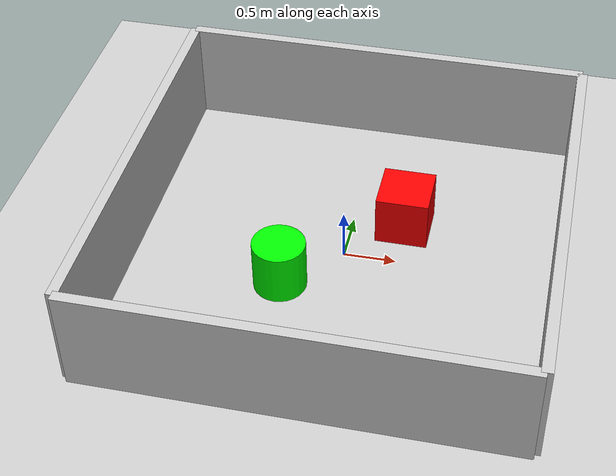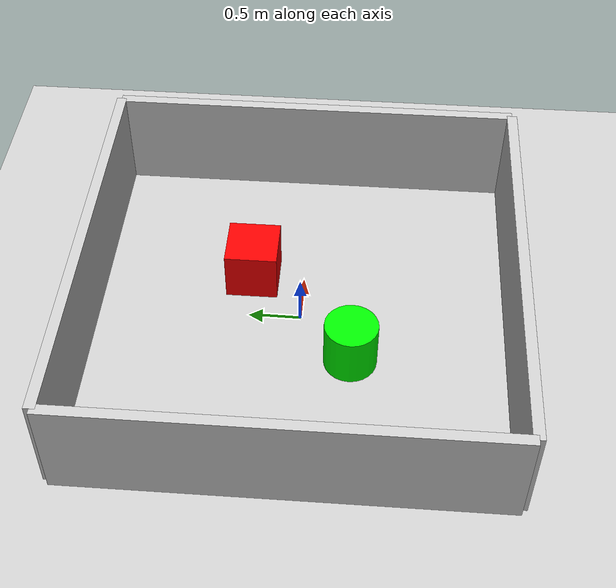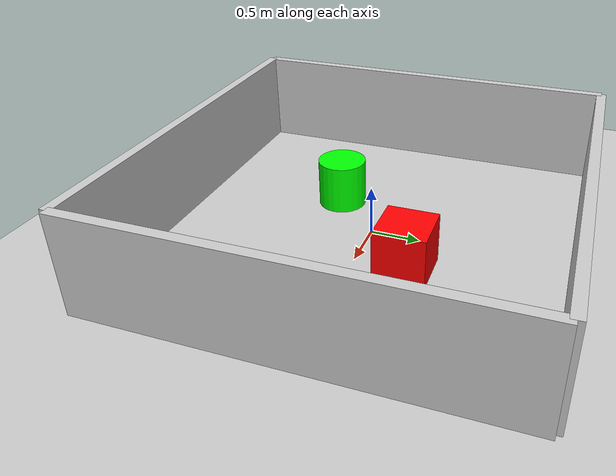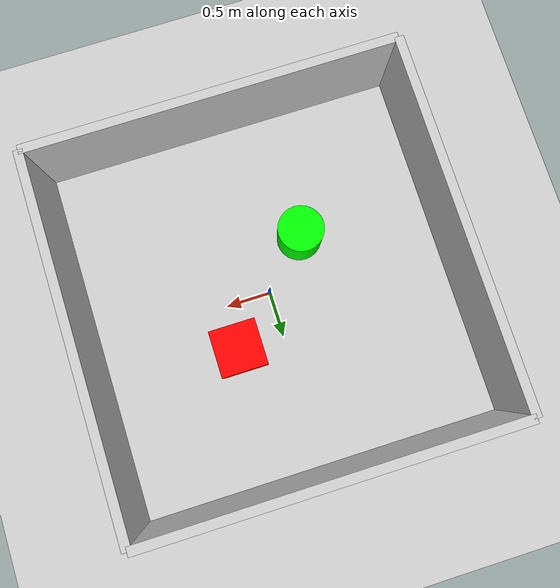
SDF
<?xml version="1.0" ?>
<sdf version="1.6">
  <world name="simple_world">

    <!-- A global light source -->
    <include>
      <uri>model://sun</uri>
    </include>

    <!-- A ground plane -->
    <include>
      <uri>model://ground_plane</uri>
    </include>

    <!-- Simple walls to create a room -->
    <model name="wall_1">
      <static>true</static>
      <link name="link">
        <collision name="collision">
          <geometry>
            <box>
              <size>4 0.1 1</size>
            </box>
          </geometry>
        </collision>
        <visual name="visual">
          <geometry>
            <box>
              <size>4 0.1 1</size>
            </box>
          </geometry>
          <material>
            <ambient>0.8 0.8 0.8 1</ambient>
            <diffuse>0.8 0.8 0.8 1</diffuse>
          </material>
        </visual>
      </link>
      <pose>0 2 0.5 0 0 0</pose>
    </model>

    <model name="wall_2">
      <static>true</static>
      <link name="link">
        <collision name="collision">
          <geometry>
            <box>
              <size>4 0.1 1</size>
            </box>
          </geometry>
        </collision>
        <visual name="visual">
          <geometry>
            <box>
              <size>4 0.1 1</size>
            </box>
          </geometry>
          <material>
            <ambient>0.8 0.8 0.8 1</ambient>
            <diffuse>0.8 0.8 0.8 1</diffuse>
          </material>
        </visual>
      </link>
      <pose>0 -2 0.5 0 0 0</pose>
    </model>

    <model name="wall_3">
      <static>true</static>
      <link name="link">
        <collision name="collision">
          <geometry>
            <box>
              <size>0.1 4 1</size>
            </box>
          </geometry>
        </collision>
        <visual name="visual">
          <geometry>
            <box>
              <size>0.1 4 1</size>
            </box>
          </geometry>
          <material>
            <ambient>0.8 0.8 0.8 1</ambient>
            <diffuse>0.8 0.8 0.8 1</diffuse>
          </material>
        </visual>
      </link>
      <pose>2 0 0.5 0 0 0</pose>
    </model>

    <model name="wall_4">
      <static>true</static>
      <link name="link">
        <collision name="collision">
          <geometry>
            <box>
              <size>0.1 4 1</size>
            </box>
          </geometry>
        </collision>
        <visual name="visual">
          <geometry>
            <box>
              <size>0.1 4 1</size>
            </box>
          </geometry>
          <material>
            <ambient>0.8 0.8 0.8 1</ambient>
            <diffuse>0.8 0.8 0.8 1</diffuse>
          </material>
        </visual>
      </link>
      <pose>-2 0 0.5 0 0 0</pose>
    </model>

    <!-- Some simple obstacles inside -->
    <model name="obstacle_1">
      <static>true</static>
      <link name="link">
        <collision name="collision">
          <geometry>
            <box>
              <size>0.5 0.5 0.5</size>
            </box>
          </geometry>
        </collision>
        <visual name="visual">
          <geometry>
            <box>
              <size>0.5 0.5 0.5</size>
            </box>
          </geometry>
          <material>
            <ambient>1 0 0 1</ambient>
            <diffuse>1 0 0 1</diffuse>
          </material>
        </visual>
      </link>
      <pose>0.5 0.5 0.25 0 0 0</pose>
    </model>

    <model name="obstacle_2">
      <static>true</static>
      <link name="link">
        <collision name="collision">
          <geometry>
            <cylinder>
              <radius>0.25</radius>
              <length>0.5</length>
            </cylinder>
          </geometry>
        </collision>
        <visual name="visual">
          <geometry>
            <cylinder>
              <radius>0.25</radius>
              <length>0.5</length>
            </cylinder>
          </geometry>
          <material>
            <ambient>0 1 0 1</ambient>
            <diffuse>0 1 0 1</diffuse>
          </material>
        </visual>
      </link>
      <pose>-0.5 -0.5 0.25 0 0 0</pose>
    </model>

    <physics name="default_physics" default="0" type="ode">
      <gravity>0 0 -9.8066</gravity>
      <ode>
        <solver>
          <type>quick</type>
          <iters>10</iters>
          <sor>1.3</sor>
        </solver>
        <constraints>
          <cfm>0.0</cfm>
          <erp>0.2</erp>
          <contact_max_correcting_vel>100.0</contact_max_correcting_vel>
          <contact_surface_layer>0.001</contact_surface_layer>
        </constraints>
      </ode>
    </physics>

  </world>
</sdf>
